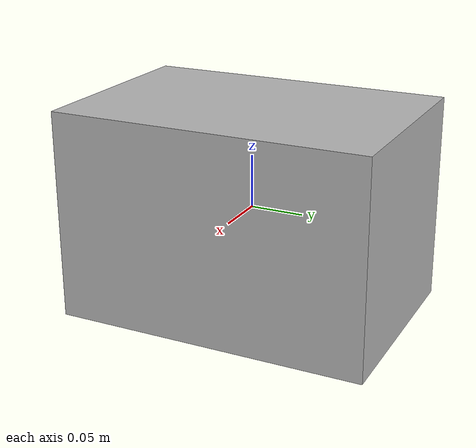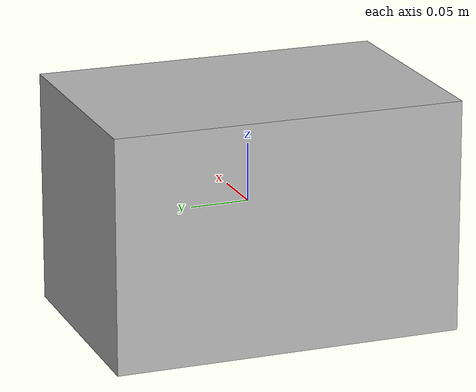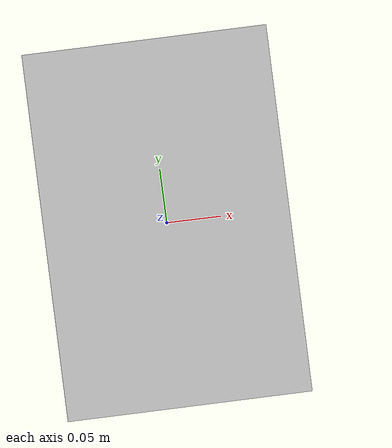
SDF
<?xml version="1.0"?>

<!--
	Inertia of a rectanglar prism with length (x), width (y), and height (z):

	Ixx = m*(y^2 + z^2)/12
	Iyy = m*(x^2 + z^2)/12
	Izz = m*(x^2 + y^2)/12
-->

<sdf version="1.6">
	<model name="box">
		<pose>0 0 0 0 0 0</pose>
		<link name="link">
			<inertial>
				<mass>0.1</mass>
				<inertia>
					<ixx>0.00006666667</ixx>
					<ixy>0</ixy>
					<ixz>0</ixz>
					<iyy>0.00006666667</iyy>
					<iyz>0</iyz>
					<izz>0.00006666667</izz>
				</inertia>
			</inertial>
			<collision name="collision">
				<geometry>
					<box>
						<size>0.2 0.3 0.2</size>  <!-- default 0.4 0.4 0.4 -->
					</box>
				</geometry>
				<surface>
					<friction>
						<ode>
							<mu>50</mu>
							<mu2>50</mu2>
						</ode>
					</friction>
					<contact>
						<ode>
							<kp>10000000.0</kp>
							<kd>1.0</kd>
							<min_depth>0.001</min_depth>
							<max_vel>0.1</max_vel>
						</ode>
					</contact>
				</surface>
			</collision>
			<visual name="visual">
				<pose>0.0 0.0 -0.1 0.0 0.0 0.0</pose>	<!-- Need to move the collision box DOWN by half the height -->
				<geometry>
					<mesh>
						<uri>model://cardboard_box/meshes/cardboard_box.dae</uri>
						<scale>0.5 0.75 0.5</scale> <!-- Scale here needs to match the size of the collision box -->
					</mesh>
				</geometry>
			</visual>
		</link>
	</model>
</sdf>
